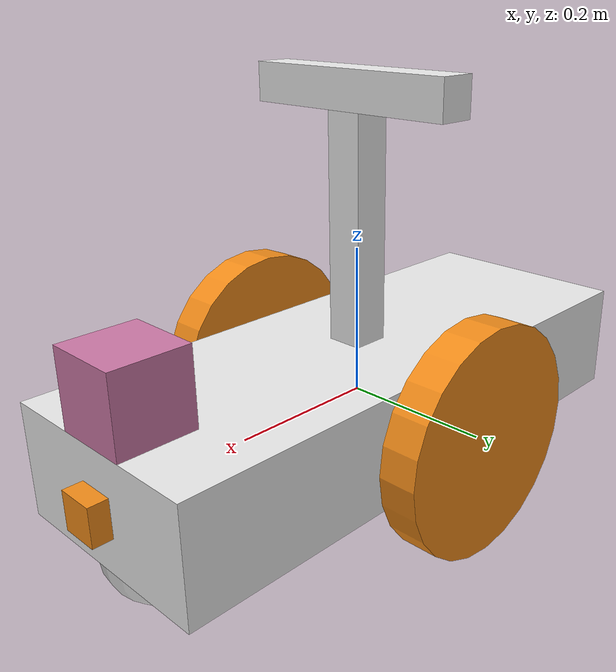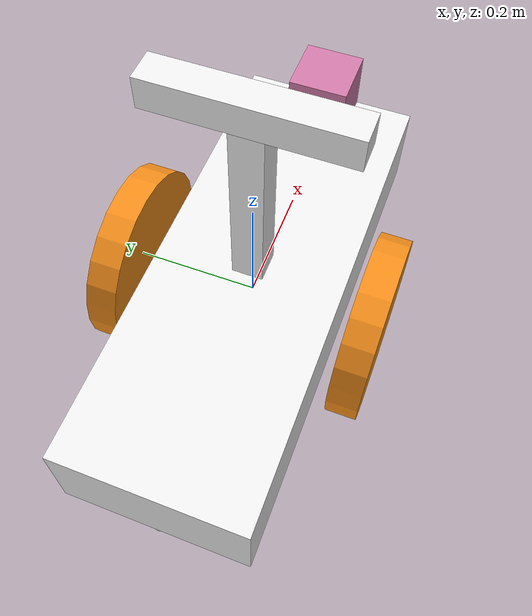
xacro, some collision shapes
<?xml version='1.0'?>

<robot name="my_robot" xmlns:xacro="http://www.ros.org/wiki/xacro">

  <xacro:include filename="$(find my_robot)/urdf/my_robot.gazebo" />

  <link name="robot_footprint"></link>

  <joint name="robot_footprint_joint" type="fixed">
    <origin xyz="0 0 0" rpy="0 0 0" />
    <parent link="robot_footprint"/>
    <child link="chassis" />
  </joint>

  <link name='chassis'>
    <pose>0 0 0.15 0 0 0</pose>

    <inertial>
      <mass value="15.0"/>
      <origin xyz="0.0 0 0" rpy=" 0 0 0"/>
      <inertia
          ixx="0.1" ixy="0" ixz="0"
          iyy="0.1" iyz="0"
          izz="0.1"
      />
    </inertial>

    <collision name='collision'>
      <origin xyz="0 0 0" rpy=" 0 0 0"/>
      <geometry>
        <box size=".8 .3 .15"/>
      </geometry>
    </collision>

    <visual name='chassis_visual'>
      <origin xyz="0 0 0" rpy=" 0 0 0"/>
      <geometry>
        <box size=".8 .3 .15"/>
      </geometry>
    </visual>

    <collision name='back_caster_collision'>
      <origin xyz="-0.325 0 -0.075" rpy=" 0 0 0"/>
      <geometry>
        <sphere radius="0.07499"/>
      </geometry>
    </collision>

    <visual name='back_caster_visual'>
      <origin xyz="-0.325 0 -0.075" rpy=" 0 0 0"/>
      <geometry>
        <sphere radius="0.075"/>
      </geometry>
    </visual>

    <collision name='front_caster_collision'>
      <origin xyz="0.325 0 -0.075" rpy=" 0 0 0"/>
      <geometry>
        <sphere radius="0.07499"/>
      </geometry>
    </collision>

    <visual name='front_caster_visual'>
      <origin xyz="0.325 0 -0.075" rpy=" 0 0 0"/>
      <geometry>
        <sphere radius="0.075"/>
      </geometry>
    </visual>

    <collision name='cuboidal_link_1_collision'>
      <origin xyz="0 0 0.225" rpy=" 0 0 0"/>
      <geometry>
        <box size=".05 .05 0.3"/>
      </geometry>
    </collision>

    <visual name='cuboidal_link_1_visual'>
      <origin xyz="0 0 0.225" rpy=" 0 0 0"/>
      <geometry>
        <box size=".05 .05 0.3"/>
      </geometry>
    </visual>

    <collision name='cuboidal_link_2_collision'>
      <origin xyz="0 0 0.4" rpy=" 0 0 0"/>
      <geometry>
        <box size=".05 .3 .05"/>
      </geometry>
    </collision>

    <visual name='cuboidal_link_2_visual'>
      <origin xyz="0 0 0.4" rpy=" 0 0 0"/>
      <geometry>
        <box size=".05 .3 .05"/>
      </geometry>
    </visual>

  </link>

  <!-- Left wheel -->
  <link name='left_wheel'>
    <inertial>
      <mass value="5.0"/>
      <origin xyz="0.0 0 0" rpy=" 0 1.5707 1.5707"/>
      <inertia
          ixx="0.1" ixy="0" ixz="0"
          iyy="0.1" iyz="0"
          izz="0.1"
      />
    </inertial>

    <collision name='left_wheel_collision'>
      <origin xyz="0 0 0" rpy=" 0 1.5707 1.5707"/>
      <geometry>
        <cylinder length="0.05" radius="0.15"/>
      </geometry>
    </collision>

    <visual name='left_wheel_visual'>
      <origin xyz="0 0 0" rpy=" 0 1.5707 1.5707"/>
      <geometry>
        <cylinder length="0.05" radius="0.15"/>
      </geometry>
    </visual>
  </link>

  <joint type="continuous" name="left_wheel_hinge">
    <origin xyz="0 0.2 0" rpy="0 0 0"/>
    <child link="left_wheel"/>
    <parent link="chassis"/>
    <axis xyz="0 1 0" rpy="0 0 0"/>
    <limit effort="10000" velocity="1000"/>
    <dynamics damping="1.0" friction="1.0"/>
  </joint>

  <!-- Right wheel -->
  <link name='right_wheel'>
    <inertial>
      <mass value="5.0"/>
      <origin xyz="0.0 0 0" rpy=" 0 1.5707 1.5707"/>
      <inertia
          ixx="0.1" ixy="0" ixz="0"
          iyy="0.1" iyz="0"
          izz="0.1"
      />
    </inertial>

    <collision name='right_wheel_collision'>
      <origin xyz="0 0 0" rpy=" 0 1.5707 1.5707"/>
      <geometry>
        <cylinder length="0.05" radius="0.15"/>
      </geometry>
    </collision>

    <visual name='right_wheel_visual'>
      <origin xyz="0 0 0" rpy=" 0 1.5707 1.5707"/>
      <geometry>
        <cylinder length="0.05" radius="0.15"/>
      </geometry>
    </visual>
  </link>

  <joint type="continuous" name="right_wheel_hinge">
    <origin xyz="0 -0.2 0" rpy="0 0 0"/>
    <child link="right_wheel"/>
    <parent link="chassis"/>
    <axis xyz="0 1 0" rpy="0 0 0"/>
    <limit effort="10000" velocity="1000"/>
    <dynamics damping="1.0" friction="1.0"/>
  </joint>

  <!-- Camera -->

  <joint name="camera_optical_joint" type="fixed">
    <origin xyz="0 0 0" rpy="-1.5707 0 -1.5707"/>
    <parent link="camera"/>
    <child link="camera_link_optical"/>
  </joint>

  <link name="camera_link_optical">
  </link>

  <link name='camera'>
    <inertial>
      <mass value="0.1"/>
      <origin xyz="0 0 0" rpy=" 0 0 0"/>
      <box_inertia m="0.1" x="0.05" y="0.05" z="0.05"/>
      <inertia
          ixx="1e-6" ixy="0" ixz="0"
          iyy="1e-6" iyz="0"
          izz="1e-6"
      />
    </inertial>

    <collision name='camera_collision'>
      <origin xyz="0 0 0" rpy=" 0 0 0"/>
      <geometry>
        <box size=".05 .05 .05"/>
      </geometry>
    </collision>

    <visual name='camera_visual'>
      <origin xyz="0 0 0" rpy=" 0 0 0"/>
      <geometry>
        <box size=".05 .05 .05"/>
      </geometry>
    </visual>
  </link>

  <joint type="fixed" name="camera_joint">
    <axis xyz="0 1 0"/>
    <origin xyz="0.4 0 0" rpy="0 0 0"/>
    <parent link="chassis"/>
    <child link="camera"/>
  </joint>

  <!-- Lidar -->
  <link name='hokuyo'>
    <inertial>
      <mass value="1e-5"/>
      <origin xyz="0 0 0" rpy=" 0 0 0"/>
      <inertia
          ixx="1e-6" ixy="0" ixz="0"
          iyy="1e-6" iyz="0"
          izz="1e-6"
      />
    </inertial>

    <collision name='hokuyo_collision'>
      <origin xyz="0 0 0" rpy=" 0 0 0"/>
      <geometry>
        <box size="0.1 0.1 0.1"/>
      </geometry>
    </collision>

    <visual name='hokuyo_visual'>
      <origin xyz="0 0 0" rpy=" 0 0 0"/>
      <geometry>
        <mesh filename="package://my_robot/meshes/hokuyo.dae"/>
      </geometry>
    </visual>
  </link>

  <joint type="fixed" name="hokuyo_joint">
    <axis xyz="0 1 0"/>
    <origin xyz="0.35 0 0.125" rpy="0 0 0"/>
    <parent link="chassis"/>
    <child link="hokuyo"/>
  </joint>

  <gazebo reference="chassis">
    <material>Gazebo/White</material>
  </gazebo>

  <gazebo reference="left_wheel">
    <material>Gazebo/Orange</material>
  </gazebo>

  <gazebo reference="right_wheel">
    <material>Gazebo/Orange</material>
  </gazebo>

  <gazebo reference="camera">
    <material>Gazebo/Orange</material>
  </gazebo>

</robot>
